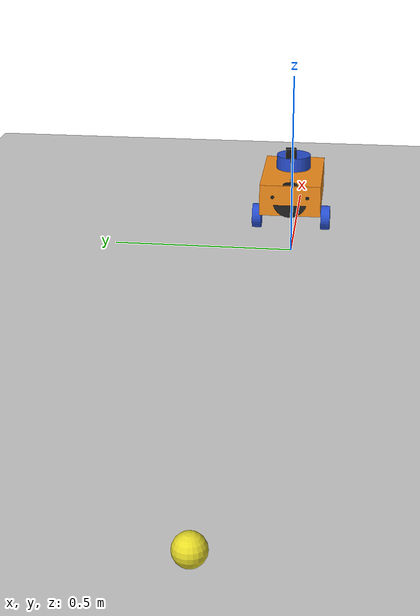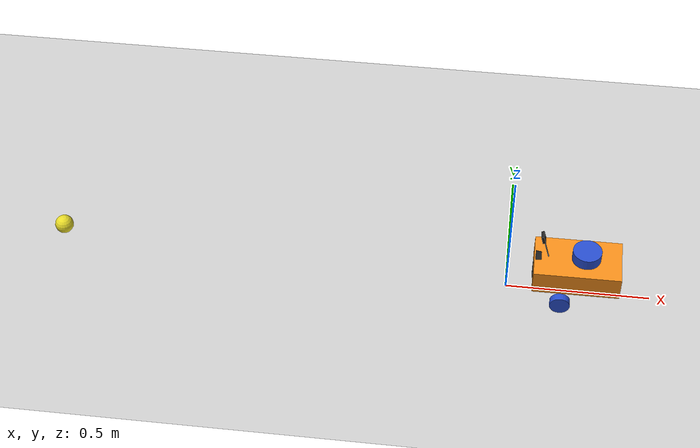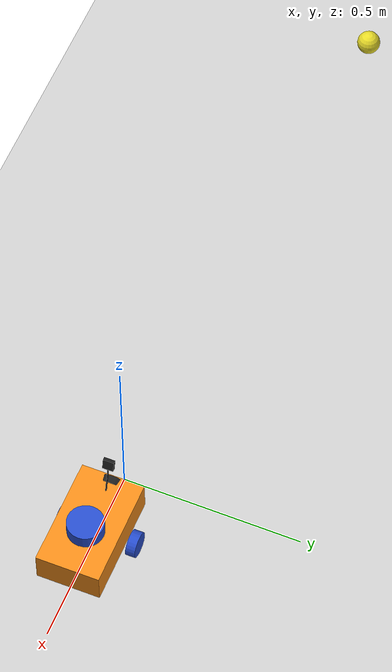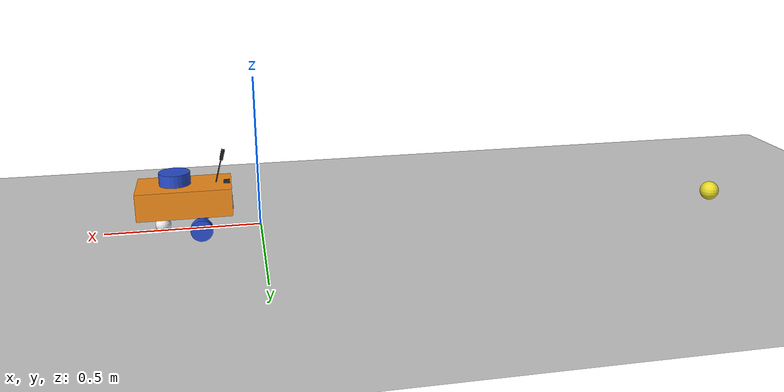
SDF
<sdf version="1.7">
 <world name="default">
  <light name="sun" type="directional">
   <pose>0 0 10 0 -0 0</pose>
   <diffuse>0.8 0.8 0.8 1</diffuse>
   <specular>0.2 0.2 0.2 1</specular>
   <attenuation>
    <range>1000</range>
    <constant>0.9</constant>
    <linear>0.01</linear>
    <quadratic>0.001</quadratic>
   </attenuation>
   <direction>-0.5 0.1 -0.9</direction>
   <spot><inner_angle>0</inner_angle><outer_angle>0</outer_angle><falloff>0</falloff></spot>
  </light>
  <model name="ground_plane">
   <static>1</static>
   <link name="link">
    <collision name="collision">
     <geometry><plane><normal>0 0 1</normal><size>100 100</size></plane></geometry>
     <surface>
      <contact><collide_bitmask>65535</collide_bitmask></contact>
      <friction><ode><mu>100</mu><mu2>50</mu2></ode></friction>
     </surface>
    </collision>
    <visual name="visual">
     <cast_shadows>0</cast_shadows>
     <geometry><plane><normal>0 0 1</normal><size>100 100</size></plane></geometry>
     <material>
      <script><uri>file://media/materials/scripts/gazebo.material</uri><name>Gazebo/Grey</name></script>
     </material>
    </visual>
   </link>
  </model>
  <gravity>0 0 -9.8</gravity>
  <magnetic_field>6e-06 2.3e-05 -4.2e-05</magnetic_field>
  <atmosphere type="adiabatic"/>
  <physics type="ode">
   <max_step_size>0.001</max_step_size>
   <real_time_factor>1</real_time_factor>
   <real_time_update_rate>1000</real_time_update_rate>
  </physics>
  <scene><ambient>0.4 0.4 0.4 1</ambient><background>0.7 0.7 0.7 1</background><shadows>1</shadows></scene>
  <spherical_coordinates>
   <surface_model>EARTH_WGS84</surface_model>
   <latitude_deg>0</latitude_deg>
   <longitude_deg>0</longitude_deg>
   <elevation>0</elevation>
   <heading_deg>0</heading_deg>
  </spherical_coordinates>
  <audio><device>default</device></audio>
  <model name="my_bot">
   <link name="base_link">
    <inertial>
     <pose>-0.05582 0 0.089508 0 -0 0</pose>
     <mass>0.61</mass>
     <inertia>
      <ixx>0.00216663</ixx>
      <ixy>0</ixy>
      <ixz>8.63459e-05</ixz>
      <iyy>0.00475458</iyy>
      <iyz>0</iyz>
      <izz>0.00526753</izz>
     </inertia>
    </inertial>
    <collision name="base_link_fixed_joint_lump__chassis_collision">
     <pose>-0.05 0 0.08 0 -0 0</pose>
     <geometry><box><size>0.3 0.175 0.09</size></box></geometry>
    </collision>
    <collision name="base_link_fixed_joint_lump__caster_wheel_collision_1">
     <pose>-0.125 0 -0.01 0 -0 0</pose>
     <geometry><sphere><radius>0.025</radius></sphere></geometry>
     <surface><friction><ode><mu>0.001</mu><mu2>0.001</mu2></ode></friction></surface>
    </collision>
    <collision name="base_link_fixed_joint_lump__laser_frame_collision_2">
     <pose>-0.078 0 0.147 0 -0 0</pose>
     <geometry><cylinder><length>0.04</length><radius>0.05</radius></cylinder></geometry>
    </collision>
    <visual name="base_link_fixed_joint_lump__chassis_visual">
     <pose>-0.05 0 0.08 0 -0 0</pose>
     <geometry><box><size>0.3 0.175 0.09</size></box></geometry>
     <material>
      <script><name>Gazebo/Orange</name><uri>file://media/materials/scripts/gazebo.material</uri></script>
     </material>
    </visual>
    <visual name="base_link_fixed_joint_lump__camera_link_visual_1">
     <pose>0.076 0 0.216 0 0.26 0</pose>
     <geometry><box><size>0.01 0.03 0.03</size></box></geometry>
     <material>
      <script><name>Gazebo/Black</name><uri>file://media/materials/scripts/gazebo.material</uri></script>
     </material>
    </visual>
    <visual name="base_link_fixed_joint_lump__camera_link_visual_2">
     <pose>0.063146 0 0.167681 0 0.26 0</pose>
     <geometry><cylinder><length>0.1</length><radius>0.002</radius></cylinder></geometry>
     <material>
      <script><name>Gazebo/Black</name><uri>file://media/materials/scripts/gazebo.material</uri></script>
     </material>
    </visual>
    <visual name="base_link_fixed_joint_lump__caster_wheel_visual_3">
     <pose>-0.125 0 -0.01 0 -0 0</pose>
     <geometry><sphere><radius>0.025</radius></sphere></geometry>
     <material>
      <script><name>Gazebo/White</name><uri>file://media/materials/scripts/gazebo.material</uri></script>
     </material>
    </visual>
    <visual name="base_link_fixed_joint_lump__face_link_visual_4">
     <pose>0.1 0.05 0.09 3.14159 1.57079 3.14159</pose>
     <geometry><cylinder><length>0.002</length><radius>0.005</radius></cylinder></geometry>
     <material>
      <script><name>Gazebo/Black</name><uri>file://media/materials/scripts/gazebo.material</uri></script>
     </material>
    </visual>
    <visual name="base_link_fixed_joint_lump__face_link_visual_5">
     <pose>0.1 -0.05 0.09 3.14159 1.57079 3.14159</pose>
     <geometry><cylinder><length>0.002</length><radius>0.005</radius></cylinder></geometry>
     <material>
      <script><name>Gazebo/Black</name><uri>file://media/materials/scripts/gazebo.material</uri></script>
     </material>
    </visual>
    <visual name="base_link_fixed_joint_lump__face_link_visual_6">
     <pose>0.089 0 0.08 0 1.5 0</pose>
     <geometry><cylinder><length>0.02</length><radius>0.05</radius></cylinder></geometry>
     <material>
      <script><name>Gazebo/Black</name><uri>file://media/materials/scripts/gazebo.material</uri></script>
     </material>
    </visual>
    <visual name="base_link_fixed_joint_lump__laser_frame_visual_7">
     <pose>-0.078 0 0.147 0 -0 0</pose>
     <geometry><cylinder><length>0.04</length><radius>0.05</radius></cylinder></geometry>
     <material>
      <script><name>Gazebo/Blue</name><uri>file://media/materials/scripts/gazebo.material</uri></script>
     </material>
    </visual>
    <sensor name="camera" type="camera">
     <visualize>1</visualize>
     <update_rate>10</update_rate>
     <camera>
      <horizontal_fov>1.089</horizontal_fov>
      <image><format>R8G8B8</format><width>640</width><height>480</height></image>
      <clip><near>0.05</near><far>8</far></clip>
     </camera>
     <plugin name="camera_controller" filename="libgazebo_ros_camera.so">
      <frame_name>camera_link_optical</frame_name>
     </plugin>
     <pose>0.076 0 0.216 0 0.26 0</pose>
    </sensor>
    <sensor name="laser" type="ray">
     <visualize>0</visualize>
     <update_rate>10</update_rate>
     <ray>
      <scan>
       <horizontal>
        <samples>360</samples>
        <min_angle>-3.14</min_angle>
        <max_angle>3.14</max_angle>
        <resolution>1</resolution>
       </horizontal>
       <vertical><samples>1</samples><min_angle>0</min_angle><max_angle>0</max_angle></vertical>
      </scan>
      <range><min>0.3</min><max>12</max></range>
     </ray>
     <plugin name="laser_controller" filename="libgazebo_ros_ray_sensor.so">
      <ros><argument>~/out:=scan</argument></ros>
      <output_type>sensor_msgs/LaserScan</output_type>
      <frame_name>laser_frame</frame_name>
     </plugin>
     <pose>-0.078 0 0.147 0 -0 0</pose>
    </sensor>
   </link>
   <joint name="left_wheel_joint" type="revolute">
    <pose relative_to="base_link">0 0.1005 0 -1.5708 0 0</pose>
    <parent>base_link</parent>
    <child>left_wheel</child>
    <axis>
     <xyz>0 0 1</xyz>
     <limit><lower>-1e+16</lower><upper>1e+16</upper></limit>
     <dynamics><spring_reference>0</spring_reference><spring_stiffness>0</spring_stiffness></dynamics>
    </axis>
   </joint>
   <link name="left_wheel">
    <pose relative_to="left_wheel_joint">0 0 0 0 -0 0</pose>
    <inertial>
     <mass>0.05</mass>
     <inertia>
      <ixx>1.81292e-05</ixx>
      <ixy>0</ixy>
      <ixz>0</ixz>
      <iyy>1.81292e-05</iyy>
      <iyz>0</iyz>
      <izz>3.0625e-05</izz>
     </inertia>
    </inertial>
    <collision name="left_wheel_collision">
     <geometry><sphere><radius>0.035</radius></sphere></geometry>
    </collision>
    <visual name="left_wheel_visual">
     <geometry><cylinder><length>0.026</length><radius>0.035</radius></cylinder></geometry>
     <material>
      <script><name>Gazebo/Blue</name><uri>file://media/materials/scripts/gazebo.material</uri></script>
     </material>
    </visual>
   </link>
   <joint name="right_wheel_joint" type="revolute">
    <pose relative_to="base_link">0 -0.1005 0 1.5708 -0 0</pose>
    <parent>base_link</parent>
    <child>right_wheel</child>
    <axis>
     <xyz>0 0 -1</xyz>
     <limit><lower>-1e+16</lower><upper>1e+16</upper></limit>
     <dynamics><spring_reference>0</spring_reference><spring_stiffness>0</spring_stiffness></dynamics>
    </axis>
   </joint>
   <link name="right_wheel">
    <pose relative_to="right_wheel_joint">0 0 0 0 -0 0</pose>
    <inertial>
     <mass>0.05</mass>
     <inertia>
      <ixx>1.81292e-05</ixx>
      <ixy>0</ixy>
      <ixz>0</ixz>
      <iyy>1.81292e-05</iyy>
      <iyz>0</iyz>
      <izz>3.0625e-05</izz>
     </inertia>
    </inertial>
    <collision name="right_wheel_collision">
     <geometry><sphere><radius>0.035</radius></sphere></geometry>
    </collision>
    <visual name="right_wheel_visual">
     <geometry><cylinder><length>0.026</length><radius>0.035</radius></cylinder></geometry>
     <material>
      <script><name>Gazebo/Blue</name><uri>file://media/materials/scripts/gazebo.material</uri></script>
     </material>
    </visual>
   </link>
   <static>0</static>
   <plugin name="gazebo_ros2_control" filename="libgazebo_ros2_control.so">
    <parameters>/home/hansan/dev_ws/install/articubot_one/share/articubot_one/config/my_controllers.yaml</parameters>
    <parameters>/home/hansan/dev_ws/install/articubot_one/share/articubot_one/config/gaz_ros2_ctl_use_sim.yaml</parameters>
   </plugin>
   <pose>0.18791 0.010689 0.034998 1.8e-05 1.9e-05 -3.13785</pose>
  </model>
  <model name="tennis_ball">
   <link name="link">
    <inertial>
     <mass>1</mass>
     <inertia><ixx>0.1</ixx><ixy>0</ixy><ixz>0</ixz><iyy>0.1</iyy><iyz>0</iyz><izz>0.1</izz></inertia>
    </inertial>
    <visual name="visual">
     <geometry><sphere><radius>0.033</radius></sphere></geometry>
     <material>
      <script><name>Gazebo/Yellow</name><uri>file://media/materials/scripts/gazebo.material</uri></script>
      <shader type="pixel"><normal_map>__default__</normal_map></shader>
      <ambient>1 1 0 1</ambient>
      <diffuse>1 1 0 1</diffuse>
      <emissive>0 0 0 1</emissive>
     </material>
    </visual>
    <collision name="collision">
     <geometry><sphere><radius>0.033</radius></sphere></geometry>
     <surface>
      <friction>
       <ode><mu>1</mu><mu2>1</mu2><fdir1>0 0 0</fdir1><slip1>0</slip1><slip2>0</slip2></ode>
       <torsional>
        <coefficient>1</coefficient>
        <patch_radius>0</patch_radius>
        <surface_radius>0</surface_radius>
        <use_patch_radius>1</use_patch_radius>
        <ode><slip>0</slip></ode>
       </torsional>
      </friction>
      <bounce><restitution_coefficient>0</restitution_coefficient><threshold>1e+06</threshold></bounce>
      <contact>
       <collide_without_contact>0</collide_without_contact>
       <collide_without_contact_bitmask>1</collide_without_contact_bitmask>
       <collide_bitmask>1</collide_bitmask>
       <ode>
        <soft_cfm>0</soft_cfm>
        <soft_erp>0.2</soft_erp>
        <kp>1e+13</kp>
        <kd>1</kd>
        <max_vel>0.01</max_vel>
        <min_depth>0</min_depth>
       </ode>
       <bullet>
        <split_impulse>1</split_impulse>
        <split_impulse_penetration_threshold>-0.01</split_impulse_penetration_threshold>
        <soft_cfm>0</soft_cfm>
        <soft_erp>0.2</soft_erp>
        <kp>1e+13</kp>
        <kd>1</kd>
       </bullet>
      </contact>
     </surface>
    </collision>
   </link>
   <static>0</static>
   <pose>-1.5997 0.077928 0.033 0 -0 0</pose>
  </model>
 </world>
</sdf>
